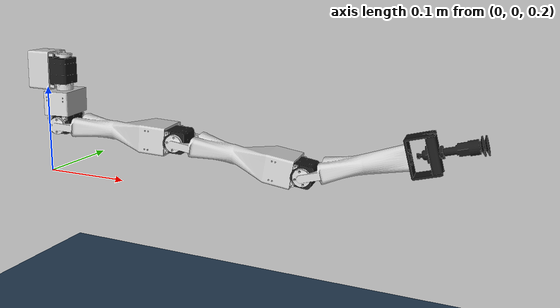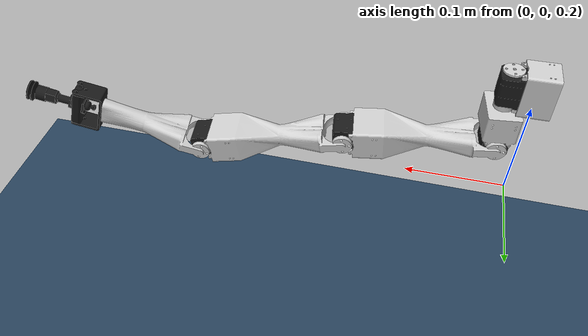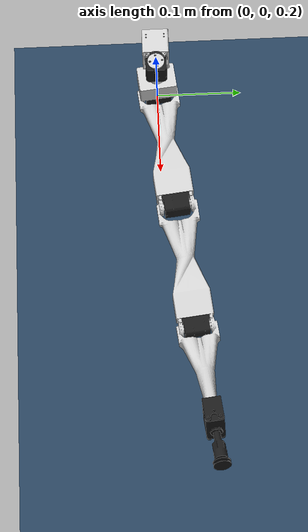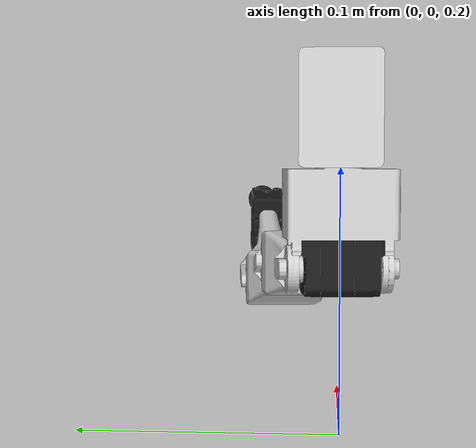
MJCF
<mujoco model="suction arm scene">
  <include file="suction_arm.xml"/>

  <statistic center="0 0 0.1" extent="0.6"/>

  <visual>
    <headlight diffuse="0.6 0.6 0.6" ambient="0.3 0.3 0.3" specular="0 0 0"/>
    <rgba haze="0.15 0.25 0.35 1"/>
    <global azimuth="210" elevation="-20"/>
  </visual>

  <asset>
    <texture type="skybox" builtin="gradient" rgb1="0.3 0.5 0.7" rgb2="0 0 0" width="512" height="3072"/>
    <texture type="2d" name="groundplane" builtin="checker" mark="edge" rgb1="0.2 0.3 0.4" rgb2="0.1 0.2 0.3"
      markrgb="0.8 0.8 0.8" width="300" height="300"/>
    <material name="groundplane" texture="groundplane" texuniform="true" texrepeat="5 5" reflectance="0.2"/>
  </asset>

  <worldbody>
    <light pos="0 0 3" dir="0 0 -1" directional="false"/>
    <geom name="floor" size="0 0 0.05" type="plane" material="groundplane" pos="0 0 0" friction="0.1"/>
  </worldbody>
</mujoco>

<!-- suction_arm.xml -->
<mujoco model="suction_arm">
  <compiler angle="radian" meshdir="assets"/>

  <option integrator="implicitfast" cone="elliptic" impratio="10"/>

  <default>
    <default class="suction_arm">
      <joint armature="0.5" frictionloss="0.2"/>
      <position kp="30" kv="5" forcerange="-87 87" inheritrange="1"/>
      <default class="visual">
        <geom type="mesh" group="2" contype="0" conaffinity="0"/>
      </default>
      <default class="collision">
        <geom type="mesh" group="3" mass="0" density="0"/>
        <default class="pad_box1">
          <geom type="box" friction="0.7" solimp="0.95 0.99 0.001" solref="0.004 1" mass="0" priority="1"
            size="0.002 0.002 0.0025" rgba="0.2 0.2 0.2 1"/>
        </default>
        <default class="pad_box2">
          <geom type="box" friction="0.6" solimp="0.95 0.99 0.001" solref="0.004 1" mass="0" priority="1"
            size="0.002 0.002 0.0052" rgba="0.1 0.1 0.1 1"/>
        </default>
      </default>
    </default>
  </default>

  <asset>
    <material name="black" rgba="0.1 0.1 0.1 1"/>
    <material name="white" rgba="0.8 0.8 0.8 1"/>

    <mesh name="base_link" file="base_link.STL"/>
    <mesh name="shoulder_motor_link" file="shoulder_motor_link.STL"/>
    <mesh name="shoulder_link" file="shoulder_link.STL"/>
    <mesh name="deltoid_motor_link" file="deltoid_motor_link.STL"/>
    <mesh name="deltoid_link" file="deltoid_link.STL"/>
    <mesh name="forearm_link" file="forearm_link.STL"/>
    <mesh name="forearm_motor_link" file="forearm_motor_link.STL"/>
    <mesh name="wrist_link" file="wrist_link.STL"/>
    <mesh name="wrist_motor_link" file="wrist_motor_link.STL"/>
    <mesh name="suction_bracket_link" file="suction_bracket_link.STL"/>
    <mesh name="suction_grip_holder" file="suction_grip_holder.STL"/>
    <mesh name="suction_vacuum" file="suction_vacuum.STL"/>
    <!-- Collision meshes -->
    <mesh name="base_link_collision" file="base_link.STL"/>
    <mesh name="shoulder_motor_link_collision" file="shoulder_motor_link.STL"/>
    <mesh name="shoulder_link_collision" file="shoulder_link.STL"/>
    <mesh name="deltoid_motor_link_collision" file="deltoid_motor_link.STL"/>
    <mesh name="deltoid_link_collision" file="deltoid_link.STL"/>
    <mesh name="forearm_link_collision" file="forearm_link.STL"/>
    <mesh name="forearm_motor_link_collision" file="forearm_motor_link.STL"/>
    <mesh name="wrist_link_collision" file="wrist_link.STL"/>
    <mesh name="wrist_motor_link_collision" file="wrist_motor_link.STL"/>
    <mesh name="suction_bracket_link_collision" file="suction_bracket_link.STL"/>
    <mesh name="suction_grip_holder_collision" file="suction_grip_holder.STL"/>
    <mesh name="suction_vacuum_collision" file="suction_vacuum.STL"/>

  </asset>

  <worldbody>
    <body name="base_link" childclass="suction_arm" pos="0 0 0.3">
    <geom mesh="base_link" class="visual" material="white"/>
   <geom mesh="base_link_collision" class="collision"/>

    <body name="shoulder_motor_link" pos="0.02505 -3.1519E-05 0.040139">
    <inertial pos="0.011924 -0.00048792 0.013381" quat="-0.0190903 0.705417 0.0178052 0.708312" mass="0.05"
    diaginertia="1.44921e-05 1.2371e-05 7.59138e-06"/>
    <joint name="shoulder_motor_joint" pos="0 0 0" axis="0 0 -1" range="-2.2 2.2"/>
    <geom mesh="shoulder_motor_link" class="visual" material="black"/>

    <body name="shoulder_link" pos="0 0 0">
    <inertial pos="0.0133776171428082 0.0123058890407129 0.0167881487228331" quat="-0.0190903 0.705417 0.0178052 0.708312" mass="0.05"
    diaginertia="1.44921e-05 1.2371e-05 7.59138e-06"/>
    <joint name="shoulder_joint" pos="0 0 0" axis="0 0 -1" range="-2.2 2.2"/>
    <geom mesh="shoulder_link" class="visual" material="white"/>
    <geom mesh="shoulder_link_collision" class="collision"/>

    <body name="deltoid_motor_link" pos="0.0012519 -0.016837 -0.080078" euler="0.0010742 0.0069315 0.12341">
    <inertial pos="0.011924 -0.00048792 0.013381" quat="-0.0190903 0.705417 0.0178052 0.708312" mass="0.5"
    diaginertia="1.44921e-05 1.2371e-05 7.59138e-06"/>
    <joint name="deltoid_motor_joint" pos="0 0 0" axis="0 0 -1" range="-2.2 2.2"/>
    <geom mesh="deltoid_motor_link" class="visual" material="black"/>

    <body name="deltoid_link" pos="0 0 0">
    <inertial pos="0.0133776171428082 0.0123058890407129 0.0167881487228331" quat="-0.0190903 0.705417 0.0178052 0.708312" mass="0.05"
    diaginertia="1.44921e-05 1.2371e-05 7.59138e-06"/>
    <joint name="deltoid_joint" pos="0 0 0" axis="0 1 0" range="-0.200 2.2"/>
    <geom mesh="deltoid_link" class="visual" material="white"/>
    <geom mesh="deltoid_link_collision" class="collision"/>

    <body name="forearm_motor_link" pos="0.14362 -0.00085934 -0.0082957" euler="0.00048976 0.056065 1.2887E-05">
    <inertial pos="0.011924 -0.00048792 0.013381" quat="-0.0190903 0.705417 0.0178052 0.708312" mass="0.05"
    diaginertia="1.44921e-05 1.2371e-05 7.59138e-06"/>
    <joint name="forearm_motor_joint" pos="0 0 0" axis="0 0 -1" range="-2.2 2.2"/>
    <geom mesh="forearm_motor_link" class="visual" material="black"/>

    <body name="forearm_link" pos="0 0 0">
    <inertial pos="0.0133776171428082 0.0123058890407129 0.0167881487228331" quat="-0.0190903 0.705417 0.0178052 0.708312" mass="0.05"
    diaginertia="1.44921e-05 1.2371e-05 7.59138e-06"/>
    <joint name="forearm_joint" pos="0 0 0" axis="0 1 0" range="-2.2 2.2"/>
    <geom mesh="forearm_link" class="visual" material="white"/>
    <geom mesh="forearm_link_collision" class="collision"/>

    <body name="wrist_motor_link" pos="0.143050161359683 -0.000854446270480215 -0.0152652438674605" euler="-0.00782463775429912 0.104676126972334 4.64447999360181E-05">
    <inertial pos="0.011924 -0.00048792 0.013381" quat="-0.0190903 0.705417 0.0178052 0.708312" mass="0.05"
    diaginertia="1.44921e-05 1.2371e-05 7.59138e-06"/>
    <joint name="wrist_motor_joint" pos="0 0 0" axis="0 0 -1" range="-2.2 2.2"/>
    <geom mesh="wrist_motor_link" class="visual" material="black"/>

    <body name="wrist_link" pos="0 0 0">
    <inertial pos="0.0133776171428082 0.0123058890407129 0.0167881487228331" quat="-0.0190903 0.705417 0.0178052 0.708312" mass="0.05"
    diaginertia="1.44921e-05 1.2371e-05 7.59138e-06"/>
    <joint name="wrist_joint" pos="0 0 0" axis="0 1 0" range="-2.2 2.2"/>
    <geom mesh="wrist_link" class="visual" material="white"/>
    <geom mesh="wrist_link_collision" class="collision"/>

    <body name="suction_bracket_link" pos="0.0998114431573799 0.0160960014960545 0.0440321056023464" euler="0.00953427957861691 -0.414732411272203 -0.0125688667027977">
    <inertial pos="0.0133776171428082 0.0123058890407129 0.0167881487228331" quat="-0.0190903 0.705417 0.0178052 0.708312" mass="0.05"
    diaginertia="1.44921e-05 1.2371e-05 7.59138e-06"/>
    <joint name="suction_bracket_joint" pos="0 0 0" axis="0 1 0" range="-2.2 2.2"/>
    <geom mesh="suction_bracket_link" class="visual" material="black"/>
    <geom mesh="suction_bracket_link_collision" class="collision"/>

    <body name="suction_grip_holder" pos="0 0 0">
    <inertial pos="0.0133776171428082 0.0123058890407129 0.0167881487228331" quat="-0.0190903 0.705417 0.0178052 0.708312" mass="0.05"
    diaginertia="1.44921e-05 1.2371e-05 7.59138e-06"/>
    <joint name="suction_grip_holder_joint" pos="0 0 0" axis="0 1 0" range="-2.2 2.2"/>
    <geom mesh="suction_grip_holder" class="visual" material="black"/>
    <geom mesh="suction_grip_holder_collision" class="collision"/>

    <body name="suction_vacuum" pos="0 0 0">
    <inertial pos="0.0133776171428082 0.0123058890407129 0.0167881487228331" quat="-0.0190903 0.705417 0.0178052 0.708312" mass="0.05"
    diaginertia="1.44921e-05 1.2371e-05 7.59138e-06"/>
    <joint name="suction_vacuum_joint" pos="0 0 0" axis="0 1 0" range="-2.2 2.2"/>
    <geom mesh="suction_vacuum" class="visual" material="black"/>
    <geom mesh="suction_vacuum_collision" class="collision"/>

    </body>
    </body>
    </body>
    </body>
    </body>
    </body>
    </body>
    </body>
    </body>
    </body>
    </body>
    </body>
  </worldbody>
  <!-- Actuator definitions-->
  <actuator>
    <position class="suction_arm" name="shoulder" joint="shoulder_joint" forcerange="-87 87"/>
    <position class="suction_arm" name="deltoid" joint="deltoid_joint" forcerange="-87 87"/>
    <position class="suction_arm" name="forearm" joint="forearm_joint" forcerange="-87 87"/>
    <position class="suction_arm" name="wrist" joint="wrist_joint" forcerange="-87 87"/>

  </actuator>

  <contact>
    <exclude name="exclude_base_shoulder" body1="base_link" body2="shoulder_link"/>
    <exclude name="exclude_base_deltoid" body1="shoulder_link" body2="deltoid_link"/>

  </contact>

  <keyframe>
    <key name="home" qpos="0" ctrl="0"/>
  </keyframe>
</mujoco>
